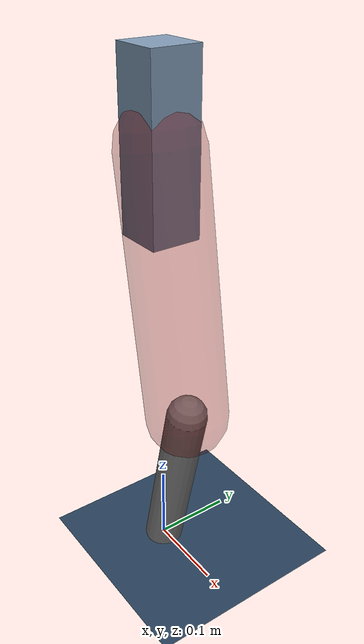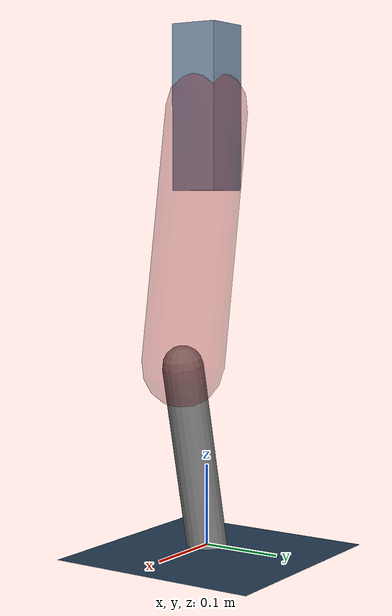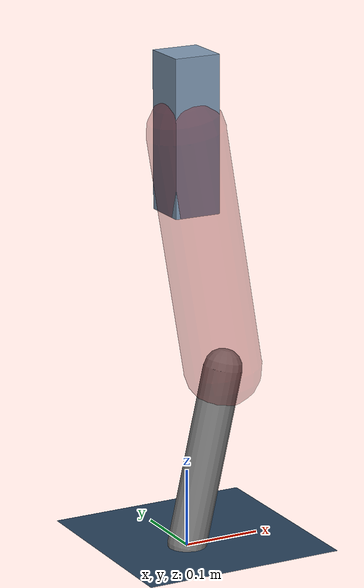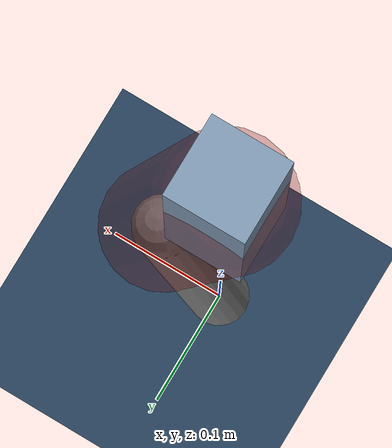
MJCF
<mujoco model="Hopper2D">
	<compiler inertiafromgeom="true" angle="radian" />
	<option timestep="0.001" integrator="implicit" cone="elliptic" solver="Newton" tolerance="1e-10" />

	<default>
		<geom contype="1" conaffinity="1" condim="3" friction="2 0.005 0.0001" solref="0.005 1" />
		<joint limited="true" damping="0.1" />
	</default>

	<asset>
		<texture name="skybox" type="skybox" builtin="gradient" rgb1=".4 .6 .8" rgb2="0 0 0" width="800" height="800" />
		<texture name="grid" type="2d" builtin="checker" rgb1=".1 .2 .3" rgb2=".2 .3 .4" width="300" height="300" mark="edge" markrgb=".2 .3 .4" />
		<material name="ground" texture="grid" texrepeat="1 1" texuniform="true" reflectance="0.1" />
		<material name="leg" rgba="0.5 0.6 0.7 1" />
	</asset>

	<worldbody>

		<geom name="floor" type="plane" size="5 5 0.25" material="ground" />

		<light directional="false" diffuse="0.8 0.8 0.8" specular="0.3 0.3 0.3" pos="0 0 2" dir="0 0 -1" />
		<light mode="targetbodycom" target="base" directional="false" diffuse="0.8 0.8 0.8" specular="0.3 0.3 0.3" pos="0 0 2" dir="0 0 -1" />

		<camera name="fixed" pos="0 -2 1" xyaxes="1 0 0 0 0 1" />
		<camera name="tracking" mode="trackcom" pos="0 -3 1" />

		<body name="root" pos="0 0 0.5383004452060363">
			<joint name="slide_x" type="slide" axis="1 0 0" range="-100 100" />
			<joint name="slide_z" type="slide" axis="0 0 1" range="0 10" />

			<body name="base" pos="0 0 0">
				<geom name="torso" type="box" size="0.03 0.03 0.1" mass="2.154" material="leg" />

				<body name="link1" pos="0 0 0" euler="0 1.4062330268285854 0">
					<joint type="hinge" axis="0 -1 0" pos="0 0 0" name="hinge1" limited="true" range="-3.14 3.14" stiffness="0" damping="0.1" />
					<geom name="thigh" type="capsule" fromto="0 0 0 0.31454751713563694 0 0" size="0.05" rgba="0.5 0 0 0.3" mass="1.0282782962662198" />

					<body name="link2" pos="0.31454751713563694 0 0" euler="0 0.38683395475268384 0">
						<joint type="hinge" axis="0 -1 0" pos="0 0 0" name="hinge2" limited="true" range="-3.14 3.14" stiffness="0" damping="0.1" />
						<geom name="shank" type="capsule" fromto="0 0 0 0.23375292807039932 0 0" size="0.025" mass="0.42910234245631945" />

					</body>
				</body>
			</body>
		</body>
	</worldbody>

	<actuator>
		<motor name="torque1" joint="hinge1" ctrlrange="-43.55463603643257 43.55463603643257" ctrllimited="true" gear="1" />
		<motor name="torque2" joint="hinge2" ctrlrange="-101.18087397266788 101.18087397266788" ctrllimited="true" gear="1" />
	</actuator>
</mujoco>
